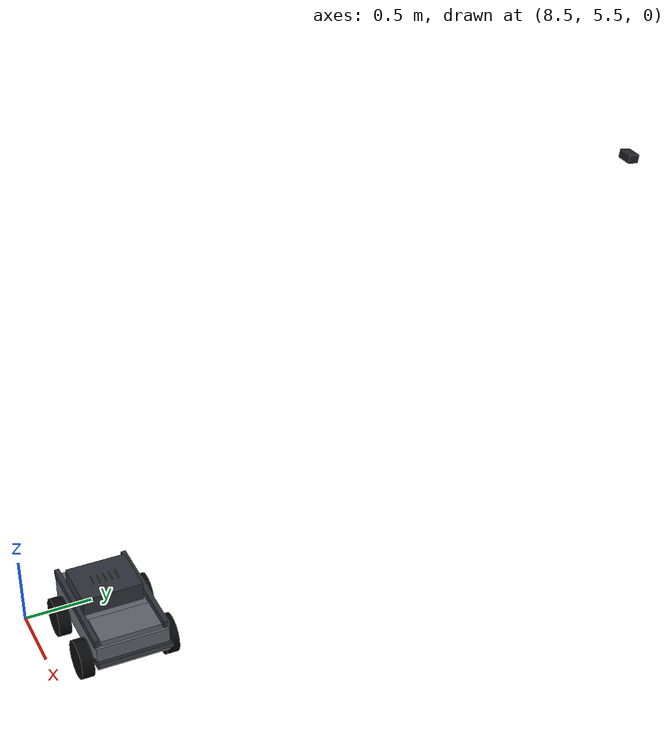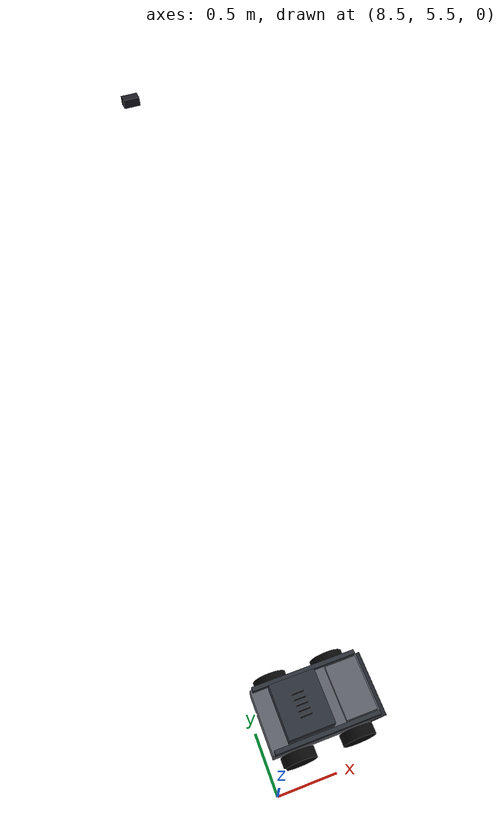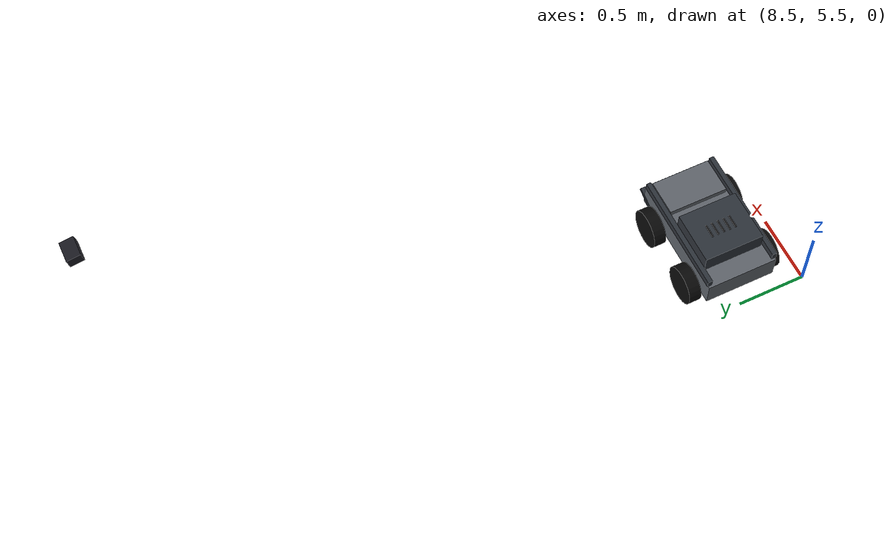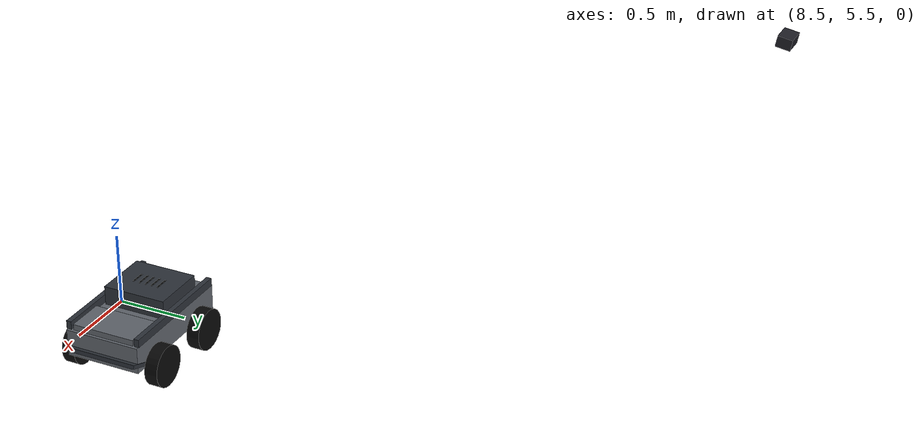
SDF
<sdf version="1.9">
 <world name="mocap_arena">
  <model name="camera_6">
   <static>true</static>
   <pose>9.0 10.0 2.9 -0.17453292519943295 1.0632884247878856e-17 -9.302568322727733e-19</pose>
   <link name="camera_link">
    <visual name="housing_visual">
     <pose>0 0 0.05 0 0 0</pose>
     <geometry><box><size>0.12 0.08 0.06</size></box></geometry>
     <material>
      <ambient>0.12 0.12 0.15 1</ambient>
      <diffuse>0.12 0.12 0.15 1</diffuse>
      <pbr><metal><metalness>0.0</metalness><roughness>0.75</roughness></metal></pbr>
     </material>
    </visual>
    <sensor name="camera_6" type="wideanglecamera">
     <pose>0 0 0 0 1.5707963267948966 1.5707963267948966</pose>
     <always_on>true</always_on>
     <update_rate>80</update_rate>
     <topic>/cameras/camera_6/image</topic>
     <visualize>true</visualize>
     <camera>
      <horizontal_fov>2.23271380848488</horizontal_fov>
      <camera_info_topic>/cameras/camera_6/camera_info</camera_info_topic>
      <image><width>1640</width><height>1232</height><format>R8G8B8</format></image>
      <clip><near>0.05</near><far>20</far></clip>
      <lens>
       <type>equidistant</type>
       <scale_to_hfov>true</scale_to_hfov>
       <cutoff_angle>1.3962634015954636</cutoff_angle>
       <env_texture_size>2048</env_texture_size>
       <intrinsics><fx>734.53211682016</fx><fy>734.53211682016</fy><cx>820.0</cx><cy>616.0</cy><s>0</s></intrinsics>
      </lens>
     </camera>
    </sensor>
   </link>
  </model>
  <model name="yolo_rover">
   <pose>9 6 0.14 0 0 0</pose>
   <link name="base_link">
    <inertial>
     <mass>8</mass>
     <inertia><ixx>0.22</ixx><iyy>0.22</iyy><izz>0.22</izz><ixy>0</ixy><ixz>0</ixz><iyz>0</iyz></inertia>
    </inertial>
    <collision name="body_collision">
     <pose>0 0 0.12 0 0 0</pose>
     <geometry><box><size>0.9 0.52 0.18</size></box></geometry>
    </collision>
    <visual name="body_visual">
     <pose>0 0 0.12 0 0 0</pose>
     <geometry><box><size>0.9 0.52 0.18</size></box></geometry>
     <material>
      <ambient>0.38 0.40 0.43 1</ambient>
      <diffuse>0.38 0.40 0.43 1</diffuse>
      <pbr><metal><metalness>0.7</metalness><roughness>0.38</roughness></metal></pbr>
     </material>
    </visual>
    <collision name="cabin_collision">
     <pose>-0.12 0 0.275 0 0 0</pose>
     <geometry><box><size>0.38 0.44 0.13</size></box></geometry>
    </collision>
    <visual name="cabin_visual">
     <pose>-0.12 0 0.275 0 0 0</pose>
     <geometry><box><size>0.38 0.44 0.13</size></box></geometry>
     <material>
      <ambient>0.18 0.20 0.23 1</ambient>
      <diffuse>0.18 0.20 0.23 1</diffuse>
      <pbr><metal><metalness>0.7</metalness><roughness>0.38</roughness></metal></pbr>
     </material>
    </visual>
    <collision name="hood_collision">
     <pose>0.3 0 0.23 0 0 0</pose>
     <geometry><box><size>0.26 0.44 0.04</size></box></geometry>
    </collision>
    <visual name="hood_visual">
     <pose>0.3 0 0.23 0 0 0</pose>
     <geometry><box><size>0.26 0.44 0.04</size></box></geometry>
     <material>
      <ambient>0.38 0.40 0.43 1</ambient>
      <diffuse>0.38 0.40 0.43 1</diffuse>
      <pbr><metal><metalness>0.7</metalness><roughness>0.38</roughness></metal></pbr>
     </material>
    </visual>
    <visual name="rail_-1_visual">
     <pose>0 -0.25 .24 0 0 0</pose>
     <geometry><box><size>0.87 0.035 0.055</size></box></geometry>
     <material>
      <ambient>0.18 0.20 0.23 1</ambient>
      <diffuse>0.18 0.20 0.23 1</diffuse>
      <pbr><metal><metalness>0.0</metalness><roughness>0.75</roughness></metal></pbr>
     </material>
    </visual>
    <visual name="rail_1_visual">
     <pose>0 0.25 .24 0 0 0</pose>
     <geometry><box><size>0.87 0.035 0.055</size></box></geometry>
     <material>
      <ambient>0.18 0.20 0.23 1</ambient>
      <diffuse>0.18 0.20 0.23 1</diffuse>
      <pbr><metal><metalness>0.0</metalness><roughness>0.75</roughness></metal></pbr>
     </material>
    </visual>
    <visual name="front_armor_visual">
     <pose>0.4 0 .07 0 -0.35 0</pose>
     <geometry><box><size>0.22 0.53 0.025</size></box></geometry>
     <material>
      <ambient>0.18 0.20 0.23 1</ambient>
      <diffuse>0.18 0.20 0.23 1</diffuse>
      <pbr><metal><metalness>0.0</metalness><roughness>0.75</roughness></metal></pbr>
     </material>
    </visual>
    <visual name="vent_0_visual">
     <pose>-.12 -0.09 .3415 0 0 0</pose>
     <geometry><box><size>0.10 0.012 0.002</size></box></geometry>
     <material>
      <ambient>0.016 0.018 0.022 1</ambient>
      <diffuse>0.016 0.018 0.022 1</diffuse>
      <pbr><metal><metalness>0.0</metalness><roughness>0.75</roughness></metal></pbr>
     </material>
    </visual>
    <visual name="vent_1_visual">
     <pose>-.12 -0.045 .3415 0 0 0</pose>
     <geometry><box><size>0.10 0.012 0.002</size></box></geometry>
     <material>
      <ambient>0.016 0.018 0.022 1</ambient>
      <diffuse>0.016 0.018 0.022 1</diffuse>
      <pbr><metal><metalness>0.0</metalness><roughness>0.75</roughness></metal></pbr>
     </material>
    </visual>
    <visual name="vent_2_visual">
     <pose>-.12 0.0 .3415 0 0 0</pose>
     <geometry><box><size>0.10 0.012 0.002</size></box></geometry>
     <material>
      <ambient>0.016 0.018 0.022 1</ambient>
      <diffuse>0.016 0.018 0.022 1</diffuse>
      <pbr><metal><metalness>0.0</metalness><roughness>0.75</roughness></metal></pbr>
     </material>
    </visual>
    <visual name="vent_3_visual">
     <pose>-.12 0.045 .3415 0 0 0</pose>
     <geometry><box><size>0.10 0.012 0.002</size></box></geometry>
     <material>
      <ambient>0.016 0.018 0.022 1</ambient>
      <diffuse>0.016 0.018 0.022 1</diffuse>
      <pbr><metal><metalness>0.0</metalness><roughness>0.75</roughness></metal></pbr>
     </material>
    </visual>
    <visual name="vent_4_visual">
     <pose>-.12 0.09 .3415 0 0 0</pose>
     <geometry><box><size>0.10 0.012 0.002</size></box></geometry>
     <material>
      <ambient>0.016 0.018 0.022 1</ambient>
      <diffuse>0.016 0.018 0.022 1</diffuse>
      <pbr><metal><metalness>0.0</metalness><roughness>0.75</roughness></metal></pbr>
     </material>
    </visual>
   </link>
   <link name="left_front">
    <pose>0.25 0.31 0 -1.5707963267948966 0 0</pose>
    <inertial>
     <mass>0.5</mass>
     <inertia><ixx>0.004</ixx><iyy>0.004</iyy><izz>0.004</izz><ixy>0</ixy><ixz>0</ixz><iyz>0</iyz></inertia>
    </inertial>
    <collision name="left_front_collision">
     <geometry><cylinder><radius>0.14</radius><length>0.09</length></cylinder></geometry>
    </collision>
    <visual name="left_front_visual">
     <geometry><cylinder><radius>0.14</radius><length>0.09</length></cylinder></geometry>
     <material><ambient>0.035 0.035 0.035 1</ambient><diffuse>0.035 0.035 0.035 1</diffuse></material>
    </visual>
   </link>
   <joint name="left_front_joint" type="revolute">
    <parent>base_link</parent>
    <child>left_front</child>
    <axis><xyz>0 0 1</xyz></axis>
   </joint>
   <link name="left_rear">
    <pose>-0.25 0.31 0 -1.5707963267948966 0 0</pose>
    <inertial>
     <mass>0.5</mass>
     <inertia><ixx>0.004</ixx><iyy>0.004</iyy><izz>0.004</izz><ixy>0</ixy><ixz>0</ixz><iyz>0</iyz></inertia>
    </inertial>
    <collision name="left_rear_collision">
     <geometry><cylinder><radius>0.14</radius><length>0.09</length></cylinder></geometry>
    </collision>
    <visual name="left_rear_visual">
     <geometry><cylinder><radius>0.14</radius><length>0.09</length></cylinder></geometry>
     <material><ambient>0.035 0.035 0.035 1</ambient><diffuse>0.035 0.035 0.035 1</diffuse></material>
    </visual>
   </link>
   <joint name="left_rear_joint" type="revolute">
    <parent>base_link</parent>
    <child>left_rear</child>
    <axis><xyz>0 0 1</xyz></axis>
   </joint>
   <link name="right_front">
    <pose>0.25 -0.31 0 -1.5707963267948966 0 0</pose>
    <inertial>
     <mass>0.5</mass>
     <inertia><ixx>0.004</ixx><iyy>0.004</iyy><izz>0.004</izz><ixy>0</ixy><ixz>0</ixz><iyz>0</iyz></inertia>
    </inertial>
    <collision name="right_front_collision">
     <geometry><cylinder><radius>0.14</radius><length>0.09</length></cylinder></geometry>
    </collision>
    <visual name="right_front_visual">
     <geometry><cylinder><radius>0.14</radius><length>0.09</length></cylinder></geometry>
     <material><ambient>0.035 0.035 0.035 1</ambient><diffuse>0.035 0.035 0.035 1</diffuse></material>
    </visual>
   </link>
   <joint name="right_front_joint" type="revolute">
    <parent>base_link</parent>
    <child>right_front</child>
    <axis><xyz>0 0 1</xyz></axis>
   </joint>
   <link name="right_rear">
    <pose>-0.25 -0.31 0 -1.5707963267948966 0 0</pose>
    <inertial>
     <mass>0.5</mass>
     <inertia><ixx>0.004</ixx><iyy>0.004</iyy><izz>0.004</izz><ixy>0</ixy><ixz>0</ixz><iyz>0</iyz></inertia>
    </inertial>
    <collision name="right_rear_collision">
     <geometry><cylinder><radius>0.14</radius><length>0.09</length></cylinder></geometry>
    </collision>
    <visual name="right_rear_visual">
     <geometry><cylinder><radius>0.14</radius><length>0.09</length></cylinder></geometry>
     <material><ambient>0.035 0.035 0.035 1</ambient><diffuse>0.035 0.035 0.035 1</diffuse></material>
    </visual>
   </link>
   <joint name="right_rear_joint" type="revolute">
    <parent>base_link</parent>
    <child>right_rear</child>
    <axis><xyz>0 0 1</xyz></axis>
   </joint>
   <plugin filename="gz-sim-diff-drive-system" name="gz::sim::systems::DiffDrive">
    <left_joint>left_front_joint</left_joint>
    <left_joint>left_rear_joint</left_joint>
    <right_joint>right_front_joint</right_joint>
    <right_joint>right_rear_joint</right_joint>
    <wheel_separation>0.62</wheel_separation>
    <wheel_radius>0.14</wheel_radius>
    <topic>/model/yolo_rover/cmd_vel</topic>
    <odom_topic>/model/yolo_rover/odometry</odom_topic>
    <max_linear_velocity>12.0</max_linear_velocity>
    <min_linear_velocity>-12.0</min_linear_velocity>
    <max_angular_velocity>3.0</max_angular_velocity>
    <min_angular_velocity>-3.0</min_angular_velocity>
   </plugin>
   <plugin filename="gz-sim-pose-publisher-system" name="gz::sim::systems::PosePublisher">
    <publish_link_pose>false</publish_link_pose>
    <publish_sensor_pose>false</publish_sensor_pose>
    <publish_collision_pose>false</publish_collision_pose>
    <publish_visual_pose>false</publish_visual_pose>
    <publish_model_pose>true</publish_model_pose>
    <use_pose_vector_msg>true</use_pose_vector_msg>
    <update_frequency>200.0</update_frequency>
   </plugin>
  </model>
 </world>
</sdf>
